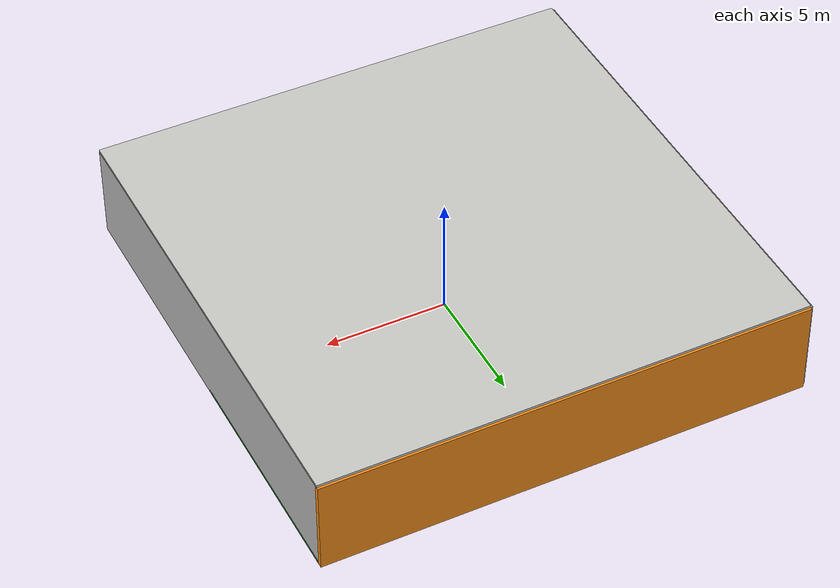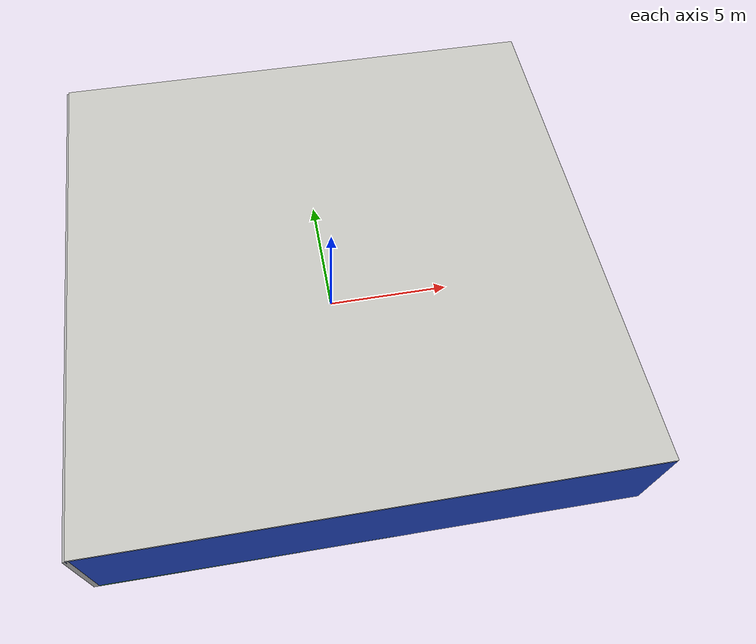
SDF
<sdf version="1.4">
 <world name="default">
  <physics type="ode">
   <max_step_size>0.001</max_step_size>
   <real_time_factor>1</real_time_factor>
   <real_time_update_rate>1000</real_time_update_rate>
   <gravity>0 0 -9.8</gravity>
  </physics>
  <scene><ambient>0.4 0.4 0.4 1</ambient><background>0.7 0.7 0.7 1</background><shadows>1</shadows></scene>
  <model name="Surrounding">
   <static>1</static>
   <link name="Ceiling">
    <collision name="Ceiling_Collision"><geometry><box><size>20 20 0.1</size></box></geometry></collision>
    <visual name="Ceiling_Visual">
     <geometry><box><size>20 20 0.1</size></box></geometry>
     <material>
      <script><uri>file://media/materials/scripts/gazebo.material</uri><name>Gazebo/CeilingTiled</name></script>
     </material>
    </visual>
    <pose>0 0 4.05 0 0 0</pose>
   </link>
   <link name="Wall_South">
    <collision name="Wall_South_Collision">
     <geometry><box><size>20 0 4</size></box></geometry>
     <pose>0 0 2 0 -0 0</pose>
    </collision>
    <visual name="Wall_South_Visual">
     <pose>0 0 2 0 -0 0</pose>
     <geometry><box><size>20 0 4</size></box></geometry>
     <material>
      <script><uri>file://media/materials/scripts/gazebo.material</uri><name>Gazebo/BlueLaser</name></script>
     </material>
    </visual>
    <velocity_decay><linear>0</linear><angular>0</angular></velocity_decay>
    <pose>0 -10 0 0 -0 0</pose>
   </link>
   <link name="Wall_East">
    <collision name="Wall_21_Collision">
     <geometry><box><size>20 0 4</size></box></geometry>
     <pose>0 0 2 0 -0 0</pose>
    </collision>
    <visual name="Wall_21_Visual">
     <pose>0 0 2 0 -0 0</pose>
     <geometry><box><size>20 0 4</size></box></geometry>
     <material>
      <script><uri>file://media/materials/scripts/gazebo.material</uri><name>Gazebo/PioneerBody</name></script>
     </material>
    </visual>
    <velocity_decay><linear>0</linear><angular>0</angular></velocity_decay>
    <pose>10 0 0 0 -0 1.5708</pose>
   </link>
   <link name="Wall_North">
    <collision name="Wall_22_Collision">
     <geometry><box><size>20 0.2 4</size></box></geometry>
     <pose>0 0 2 0 -0 0</pose>
    </collision>
    <visual name="Wall_22_Visual">
     <pose>0 0 2 0 -0 0</pose>
     <geometry><box><size>20 0.2 4</size></box></geometry>
     <material>
      <script><uri>file://media/materials/scripts/gazebo.material</uri><name>Gazebo/Orange</name></script>
     </material>
    </visual>
    <velocity_decay><linear>0</linear><angular>0</angular></velocity_decay>
    <pose>0 10 0 0 -0 0</pose>
   </link>
   <link name="Wall_West">
    <collision name="Wall_23_Collision">
     <geometry><box><size>20 0.2 4</size></box></geometry>
     <pose>0 0 2 0 -0 0</pose>
    </collision>
    <visual name="Wall_23_Visual">
     <pose>0 0 2 0 -0 0</pose>
     <geometry><box><size>20 0.2 4</size></box></geometry>
     <material>
      <script><uri>file://media/materials/scripts/gazebo.material</uri><name>Gazebo/LightOn</name></script>
     </material>
    </visual>
    <velocity_decay><linear>0</linear><angular>0</angular></velocity_decay>
    <pose>-10 0 0 0 0 -1.5708</pose>
   </link>
   <link name="Ground_link">
    <collision name="collision">
     <pose>0 0 .05 0 -0 0</pose>
     <geometry><box><size>20 20 0.1</size></box></geometry>
    </collision>
    <visual name="visual">
     <pose>0 0 .05 0 -0 0</pose>
     <geometry><box><size>20 20 0.1</size></box></geometry>
     <material>
      <script><uri>file://media/materials/scripts/gazebo.material</uri><name>Gazebo/Green</name></script>
     </material>
    </visual>
   </link>
   <static>1</static>
  </model>
  <spherical_coordinates>
   <surface_model>EARTH_WGS84</surface_model>
   <latitude_deg>0</latitude_deg>
   <longitude_deg>0</longitude_deg>
   <elevation>0</elevation>
   <heading_deg>0</heading_deg>
  </spherical_coordinates>
  <light name="lightball_0" type="diffuse">
   <diffuse>0.8 0.8 0.8 1</diffuse>
   <specular>0.2 0.2 0.2 1</specular>
   <attenuation>
    <range>100</range>
    <constant>0.7</constant>
    <linear>0.01</linear>
    <quadratic>0.001</quadratic>
   </attenuation>
   <direction>-0.5 0.1 -0.9</direction>
   <pose>8.39904199369 -7.05449341664 2.18442177734 0 0 0</pose>
  </light>
  <light name="lightball_1" type="diffuse">
   <diffuse>0.8 0.8 0.8 1</diffuse>
   <specular>0.2 0.2 0.2 1</specular>
   <attenuation>
    <range>100</range>
    <constant>0.7</constant>
    <linear>0.01</linear>
    <quadratic>0.001</quadratic>
   </attenuation>
   <direction>-0.5 0.1 -0.9</direction>
   <pose>3.84858260804 1.52780020842 1.21408994008 0 0 0</pose>
  </light>
  <light name="lightball_2" type="diffuse">
   <diffuse>0.8 0.8 0.8 1</diffuse>
   <specular>0.2 0.2 0.2 1</specular>
   <attenuation>
    <range>100</range>
    <constant>0.7</constant>
    <linear>0.01</linear>
    <quadratic>0.001</quadratic>
   </attenuation>
   <direction>-0.5 0.1 -0.9</direction>
   <pose>-5.31502234869 -7.93534951651 3.37055475437 0 0 0</pose>
  </light>
  <light name="lightball_3" type="diffuse">
   <diffuse>0.8 0.8 0.8 1</diffuse>
   <specular>0.2 0.2 0.2 1</specular>
   <attenuation>
    <range>100</range>
    <constant>0.7</constant>
    <linear>0.01</linear>
    <quadratic>0.001</quadratic>
   </attenuation>
   <direction>-0.5 0.1 -0.9</direction>
   <pose>9.85622996208 0.0858531224837 2.36159846062 0 0 0</pose>
  </light>
  <light name="lightball_4" type="diffuse">
   <diffuse>0.8 0.8 0.8 1</diffuse>
   <specular>0.2 0.2 0.2 1</specular>
   <attenuation>
    <range>100</range>
    <constant>0.7</constant>
    <linear>0.01</linear>
    <quadratic>0.001</quadratic>
   </attenuation>
   <direction>-0.5 0.1 -0.9</direction>
   <pose>1.01763295638 -9.39691308212 1.85821969308 0 0 0</pose>
  </light>
  <light name="lightball_5" type="diffuse">
   <diffuse>0.8 0.8 0.8 1</diffuse>
   <specular>0.2 0.2 0.2 1</specular>
   <attenuation>
    <range>100</range>
    <constant>0.7</constant>
    <linear>0.01</linear>
    <quadratic>0.001</quadratic>
   </attenuation>
   <direction>-0.5 0.1 -0.9</direction>
   <pose>3.14389260368 -4.58431192975 3.61195959693 0 0 0</pose>
  </light>
  <include>
   <uri>model://construction_cone</uri>
   <pose>-7.6635883064 -8.14606972119 0 0 0 1.9811463623</pose>
  </include>
  <include>
   <uri>model://textured_shapes</uri>
   <pose>-5.03668019632 -3.77185788116 0 0 0 0.00737975829832</pose>
  </include>
  <include><uri>model://table</uri><pose>-0.869385127558 -6.72130011581 0 0 0 0.728570404205</pose></include>
  <include><uri>model://cabinet</uri><pose>-0.61451941293 4.62581261899 0 0 0 1.44713238343</pose></include>
  <include>
   <uri>model://robocup_3Dsim_goal</uri>
   <pose>1.47995494626 -4.12676671965 0 0 0 1.89290136553</pose>
  </include>
  <include>
   <uri>model://robocup_3Dsim_goal</uri>
   <pose>4.10714656287 -3.64227273019 0 0 0 2.9816039903</pose>
  </include>
  <include><uri>model://table</uri><pose>6.47942793031 1.00313099831 0 0 0 1.30423018325</pose></include>
  <include><uri>model://table</uri><pose>6.52843845783 4.32326216288 0 0 0 3.10721550401</pose></include>
 </world>
</sdf>

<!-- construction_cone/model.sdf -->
<sdf version="1.5">
  <model name="Construction Cone">
    <link name="link">
      <collision name="collision">
        <geometry>
          <mesh>
            <scale>10 10 10</scale>
            <uri>file://isr-testbed/construction_cone/meshes/construction_cone.dae</uri>
          </mesh>
        </geometry>
      </collision>
      <visual name="visual">
        <geometry>
          <mesh>
            <scale>10 10 10</scale>
            <uri>file://isr-testbed/construction_cone/meshes/construction_cone.dae</uri>
          </mesh>
        </geometry>
      </visual>
    </link>
  </model>
</sdf>

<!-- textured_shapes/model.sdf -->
<sdf version="1.6">
  <model name="textured_shapes">
    <pose>0 0 0.5 0 0 0</pose>
    <link name="box">
      <pose>0 -1.5 0 0 0 0</pose>
      <collision name="collision">
        <geometry>
          <box>
            <size>1 1 1</size>
          </box>
        </geometry>
      </collision>
      <visual name="visual">
        <geometry>
          <box>
            <size>1 1 1</size>
          </box>
        </geometry>
        <material>
          <script>
            <uri>model://../model_source/models/textured_shapes/materials/scripts</uri>
            <uri>model://../model_source/models/textured_shapes/materials/textures</uri>
            <name>TexturedShape/Squares</name>
          </script>
        </material>
      </visual>
    </link>
    <link name="sphere">
      <collision name="collision">
        <geometry>
          <sphere>
            <radius>0.5</radius>
          </sphere>
        </geometry>
      </collision>
      <visual name="visual">
        <geometry>
          <sphere>
            <radius>0.5</radius>
          </sphere>
        </geometry>
        <material>
          <script>
            <uri>model://../model_source/models/textured_shapes/materials/scripts</uri>
            <uri>model://../model_source/models/textured_shapes/materials/textures</uri>
            <name>TexturedShape/Squares</name>
          </script>
        </material>
      </visual>
    </link>
    <link name="cylinder">
      <pose>0 1.5 0 0 0 0</pose>
      <collision name="collision">
        <geometry>
          <cylinder>
            <radius>0.5</radius>
            <length>1</length>
          </cylinder>
        </geometry>
      </collision>
      <visual name="visual">
        <geometry>
          <cylinder>
            <radius>0.5</radius>
            <length>1</length>
          </cylinder>
        </geometry>
        <material>
          <script>
            <uri>model://../model_source/models/textured_shapes/materials/scripts</uri>
            <uri>model://../model_source/models/textured_shapes/materials/textures</uri>
            <name>TexturedShape/Squares</name>
          </script>
        </material>
      </visual>
    </link>
  </model>
</sdf>

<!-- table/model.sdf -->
<sdf version="1.5">
  <model name="table">
    <static>true</static>
    <link name="link">
      <collision name="surface">
        <pose>0 0 1.0 0 0 0</pose>
        <geometry>
          <box>
            <size>1.5 0.8 0.03</size>
          </box>
        </geometry>
        <surface>
          <friction>
            <ode>
              <mu>0.6</mu>
              <mu2>0.6</mu2>
            </ode>
          </friction>
        </surface>
      </collision>
      <visual name="visual1">
        <pose>0 0 1.0 0 0 0</pose>
        <geometry>
          <box>
            <size>1.5 0.8 0.03</size>
          </box>
        </geometry>
        <material>
          <script>
            <uri>model://media/materials/scripts/gazebo.material</uri>
            <name>Gazebo/Wood</name>
          </script>
        </material>
      </visual>
      <collision name="front_left_leg">
        <pose>0.68 0.38 0.5 0 0 0</pose>
        <geometry>
          <cylinder>
            <radius>0.02</radius>
            <length>1.0</length>
          </cylinder>
        </geometry>
      </collision>
      <visual name="front_left_leg">
        <pose>0.68 0.38 0.5 0 0 0</pose>
        <geometry>
          <cylinder>
            <radius>0.02</radius>
            <length>1.0</length>
          </cylinder>
        </geometry>
        <material>
          <script>
            <uri>model://media/materials/scripts/gazebo.material</uri>
            <name>Gazebo/Grey</name>
          </script>
        </material>
      </visual>
      <collision name="front_right_leg">
        <pose>0.68 -0.38 0.5 0 0 0</pose>
        <geometry>
          <cylinder>
            <radius>0.02</radius>
            <length>1.0</length>
          </cylinder>
        </geometry>
      </collision>
      <visual name="front_right_leg">
        <pose>0.68 -0.38 0.5 0 0 0</pose>
        <geometry>
          <cylinder>
            <radius>0.02</radius>
            <length>1.0</length>
          </cylinder>
        </geometry>
        <material>
          <script>
            <uri>model://media/materials/scripts/gazebo.material</uri>
            <name>Gazebo/Grey</name>
          </script>
        </material>
      </visual>
      <collision name="back_right_leg">
        <pose>-0.68 -0.38 0.5 0 0 0</pose>
        <geometry>
          <cylinder>
            <radius>0.02</radius>
            <length>1.0</length>
          </cylinder>
        </geometry>
      </collision>
      <visual name="back_right_leg">
        <pose>-0.68 -0.38 0.5 0 0 0</pose>
        <geometry>
          <cylinder>
            <radius>0.02</radius>
            <length>1.0</length>
          </cylinder>
        </geometry>
        <material>
          <script>
            <uri>model://media/materials/scripts/gazebo.material</uri>
            <name>Gazebo/Grey</name>
          </script>
        </material>
      </visual>
      <collision name="back_left_leg">
        <pose>-0.68 0.38 0.5 0 0 0</pose>
        <geometry>
          <cylinder>
            <radius>0.02</radius>
            <length>1.0</length>
          </cylinder>
        </geometry>
      </collision>
      <visual name="back_left_leg">
        <pose>-0.68 0.38 0.5 0 0 0</pose>
        <geometry>
          <cylinder>
            <radius>0.02</radius>
            <length>1.0</length>
          </cylinder>
        </geometry>
        <material>
          <script>
            <uri>model://media/materials/scripts/gazebo.material</uri>
            <name>Gazebo/Grey</name>
          </script>
        </material>
      </visual>
    </link>
  </model>
</sdf>

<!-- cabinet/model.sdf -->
<sdf version="1.5">
  <model name="cabinet">
    <static>true</static>
    <link name="cabinet_bottom_plate">
      <inertial>
        <pose>0 0 -1 0 0 0</pose>
        <inertia>
          <ixx>2.050000</ixx>
          <ixy>0</ixy>
          <ixz>0</ixz>
          <iyy>2.050000</iyy>
          <iyz>0</iyz>
          <izz>2.050000</izz>
        </inertia>
        <mass>25.000000</mass>
      </inertial>
      <collision name="cabinet_bottom_plate_geom">
        <pose>0 0 0.010000 0 0 0</pose>
        <geometry>
          <box>
            <size>0.450000 0.450000 0.020000</size>
          </box>
        </geometry>
      </collision>
      <visual name="cabinet_bottom_plate_geom_visual">
        <pose>0 0 0.010000 0 0 0</pose>
        <geometry>
          <box>
            <size>0.450000 0.450000 0.020000</size>
          </box>
        </geometry>
        <material>
          <script>
            <uri>model://media/materials/scripts/gazebo.material</uri>
            <name>Gazebo/Wood</name>
          </script>
        </material>
      </visual>
      <collision name="cabinet_bottom_plate_geom_cabinet_back_plate">
        <pose>0.235000 0 0.510000 0 0 0</pose>
        <geometry>
          <box>
            <size>0.020000 0.450000 1.020000</size>
          </box>
        </geometry>
      </collision>
      <visual name="cabinet_bottom_plate_geom_cabinet_back_plate_visual">
        <pose>0.235000 0 0.510000 0 0 0</pose>
        <geometry>
          <box>
            <size>0.020000 0.450000 1.020000</size>
          </box>
        </geometry>
        <material>
          <script>
            <uri>model://media/materials/scripts/gazebo.material</uri>
            <name>Gazebo/Wood</name>
          </script>
        </material>
      </visual>
      <collision name="cabinet_bottom_plate_geom_cabinet_left_plate">
        <pose>0 0.235000 0.510000 0 0 0</pose>
        <geometry>
          <box>
            <size>0.450000 0.020000 1.020000</size>
          </box>
        </geometry>
      </collision>
      <visual name="cabinet_bottom_plate_geom_cabinet_left_plate_visual">
        <pose>0 0.235000 0.510000 0 0 0</pose>
        <geometry>
          <box>
            <size>0.450000 0.020000 1.020000</size>
          </box>
        </geometry>
        <material>
          <script>
            <uri>model://media/materials/scripts/gazebo.material</uri>
            <name>Gazebo/Wood</name>
          </script>
        </material>
      </visual>
      <collision name="cabinet_bottom_plate_geom_cabinet_middle_plate">
        <pose>0 0 0.510000 0 0 0</pose>
        <geometry>
          <box>
            <size>0.450000 0.450000 0.020000</size>
          </box>
        </geometry>
      </collision>
      <visual name="cabinet_bottom_plate_geom_cabinet_middle_plate_visual">
        <pose>0 0 0.510000 0 0 0</pose>
        <geometry>
          <box>
            <size>0.450000 0.450000 0.020000</size>
          </box>
        </geometry>
        <material>
          <script>
            <uri>model://media/materials/scripts/gazebo.material</uri>
            <name>Gazebo/Wood</name>
          </script>
        </material>
      </visual>
      <collision name="cabinet_bottom_plate_geom_cabinet_right_plate">
        <pose>0 -0.235000 0.510000 0 0 0</pose>
        <geometry>
          <box>
            <size>0.450000 0.020000 1.020000</size>
          </box>
        </geometry>
      </collision>
      <visual name="cabinet_bottom_plate_geom_cabinet_right_plate_visual">
        <pose>0 -0.235000 0.510000 0 0 0</pose>
        <geometry>
          <box>
            <size>0.450000 0.020000 1.020000</size>
          </box>
        </geometry>
        <material>
          <script>
            <uri>model://media/materials/scripts/gazebo.material</uri>
            <name>Gazebo/Wood</name>
          </script>
        </material>
      </visual>
      <collision name="cabinet_bottom_plate_geom_cabinet_top_plate">
        <pose>0 0 1.010000 0 0 0</pose>
        <geometry>
          <box>
            <size>0.450000 0.450000 0.020000</size>
          </box>
        </geometry>
      </collision>
      <visual name="cabinet_bottom_plate_geom_cabinet_top_plate_visual">
        <pose>0 0 1.010000 0 0 0</pose>
        <geometry>
          <box>
            <size>0.450000 0.450000 0.020000</size>
          </box>
        </geometry>
        <material>
          <script>
            <uri>model://media/materials/scripts/gazebo.material</uri>
            <name>Gazebo/Wood</name>
          </script>
        </material>
      </visual>
    </link>
  </model>
</sdf>

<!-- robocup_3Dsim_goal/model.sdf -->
<sdf version="1.5">
  <model name="robocup_3d_goal">
    <static>true</static>
    <link name="left_post">
      <pose>0 1.05 0.45 0 0 0</pose>
      <collision name="collision">
        <geometry>
          <cylinder>
            <radius>0.05</radius>
            <length>0.9</length>
          </cylinder>
        </geometry>
      </collision>
      <visual name="visual">
        <geometry>
          <cylinder>
            <radius>0.05</radius>
            <length>0.9</length>
          </cylinder>
        </geometry>
        <material>
          <script>
            <uri>file://media/materials/scripts/gazebo.material</uri>
            <name>Gazebo/ZincYellow</name>
          </script>
        </material>
      </visual>
    </link>
    <link name="left_support_horiz_lower">
      <pose>0.30 1.05 0.01 0 0 0</pose>
      <collision name="collision">
        <geometry>
          <box>
            <size>0.50 0.02 0.02</size>
          </box>
        </geometry>
      </collision>
      <visual name="visual">
        <geometry>
          <box>
            <size>0.50 0.02 0.02</size>
          </box>
        </geometry>
        <material>
          <script>
            <uri>file://media/materials/scripts/gazebo.material</uri>
            <name>Gazebo/White</name>
          </script>
        </material>
      </visual>
    </link>
    <link name="left_support_horiz_upper">
      <pose>0.30 1.05 0.79 0 0 0</pose>
      <collision name="collision">
        <geometry>
          <box>
            <size>0.50 0.02 0.02</size>
          </box>
        </geometry>
      </collision>
      <visual name="visual">
        <geometry>
          <box>
            <size>0.50 0.02 0.02</size>
          </box>
        </geometry>
        <material>
          <script>
            <uri>file://media/materials/scripts/gazebo.material</uri>
            <name>Gazebo/White</name>
          </script>
        </material>
      </visual>
    </link>
    <link name="left_support_vertical">
      <pose>0.56 1.05 0.4 0 1.5708 0</pose>
      <collision name="collision">
        <geometry>
          <box>
            <size>0.80 0.02 0.02</size>
          </box>
        </geometry>
      </collision>
      <visual name="visual">
        <geometry>
          <box>
            <size>0.80 0.02 0.02</size>
          </box>
        </geometry>
        <material>
          <script>
            <uri>file://media/materials/scripts/gazebo.material</uri>
            <name>Gazebo/White</name>
          </script>
        </material>
      </visual>
    </link>
    <link name="right_support_horiz_lower">
      <pose>0.30 -1.05 0.01 0 0 0</pose>
      <collision name="collision">
        <geometry>
          <box>
            <size>0.50 0.02 0.02</size>
          </box>
        </geometry>
      </collision>
      <visual name="visual">
        <geometry>
          <box>
            <size>0.50 0.02 0.02</size>
          </box>
        </geometry>
        <material>
          <script>
            <uri>file://media/materials/scripts/gazebo.material</uri>
            <name>Gazebo/White</name>
          </script>
        </material>
      </visual>
    </link>
    <link name="right_support_horiz_upper">
      <pose>0.30 -1.05 0.79 0 0 0</pose>
      <collision name="collision">
        <geometry>
          <box>
            <size>0.50 0.02 0.02</size>
          </box>
        </geometry>
      </collision>
      <visual name="visual">
        <geometry>
          <box>
            <size>0.50 0.02 0.02</size>
          </box>
        </geometry>
        <material>
          <script>
            <uri>file://media/materials/scripts/gazebo.material</uri>
            <name>Gazebo/White</name>
          </script>
        </material>
      </visual>
    </link>
    <link name="right_support_vertical">
      <pose>0.56 -1.05 0.4 0 1.5708 0</pose>
      <collision name="collision">
        <geometry>
          <box>
            <size>0.80 0.02 0.02</size>
          </box>
        </geometry>
      </collision>
      <visual name="visual">
        <geometry>
          <box>
            <size>0.80 0.02 0.02</size>
          </box>
        </geometry>
        <material>
          <script>
            <uri>file://media/materials/scripts/gazebo.material</uri>
            <name>Gazebo/White</name>
          </script>
        </material>
      </visual>
    </link>
    <link name="center_support_horiz_lower">
      <pose>0.56 0 0.01 0 1.5708 0</pose>
      <collision name="collision">
        <geometry>
          <box>
            <size>0.02 2.08 0.02</size>
          </box>
        </geometry>
      </collision>
      <visual name="visual">
        <geometry>
          <box>
            <size>0.02 2.08 0.02</size>
          </box>
        </geometry>
        <material>
          <script>
            <uri>file://media/materials/scripts/gazebo.material</uri>
            <name>Gazebo/White</name>
          </script>
        </material>
      </visual>
    </link>
    <link name="center_support_horiz_upper">
      <pose>0.56 0 0.79 0 1.5708 0</pose>
      <collision name="collision">
        <geometry>
          <box>
            <size>0.02 2.08 0.02</size>
          </box>
        </geometry>
      </collision>
      <visual name="visual">
        <geometry>
          <box>
            <size>0.02 2.08 0.02</size>
          </box>
        </geometry>
        <material>
          <script>
            <uri>file://media/materials/scripts/gazebo.material</uri>
            <name>Gazebo/White</name>
          </script>
        </material>
      </visual>
    </link>
    <link name="right_post">
      <pose>0 -1.05 0.45 0 0 0</pose>
      <collision name="collision">
        <geometry>
          <cylinder>
            <radius>0.05</radius>
            <length>0.9</length>
          </cylinder>
        </geometry>
      </collision>
      <visual name="visual">
        <geometry>
          <cylinder>
            <radius>0.05</radius>
            <length>0.9</length>
          </cylinder>
        </geometry>
        <material>
          <script>
            <uri>file://media/materials/scripts/gazebo.material</uri>
            <name>Gazebo/ZincYellow</name>
          </script>
        </material>
      </visual>
    </link>
    <link name="crossbar">
      <pose>0 0 0.85 1.57 1.57 0</pose>
      <collision name="collision">
        <geometry>
          <cylinder>
            <radius>0.05</radius>
            <length>2.0</length>
          </cylinder>
        </geometry>
      </collision>
      <visual name="visual">
        <geometry>
          <cylinder>
            <radius>0.05</radius>
            <length>2.0</length>
          </cylinder>
        </geometry>
        <material>
          <script>
            <uri>file://media/materials/scripts/gazebo.material</uri>
            <name>Gazebo/ZincYellow</name>
          </script>
        </material>
      </visual>
    </link>
    <link name="center_net">
      <pose>0.56 0 0.40 0 0 0</pose>
      <collision name="collision">
        <geometry>
          <box>
            <size>0.01 2.1 0.80</size>
          </box>
        </geometry>
      </collision>
      <visual name="visual">
        <geometry>
          <box>
            <size>0.01 2.1 0.80</size>
          </box>
        </geometry>
        <material>
          <script>
            <uri>model://../model_source/models/robocup09_spl_field/materials/scripts/</uri>
            <uri>model://../model_source/models/robocup09_spl_field/materials/textures/</uri>
            <name>RoboCup/Net</name>
          </script>
        </material>
      </visual>
    </link>
    <link name="left_net">
      <pose>0.30 1.05 0.40 0 0 0</pose>
      <collision name="collision">
        <geometry>
          <box>
            <size>0.50 0.01 0.76</size>
          </box>
        </geometry>
      </collision>
      <visual name="visual">
        <geometry>
          <box>
            <size>0.50 0.01 0.76</size>
          </box>
        </geometry>
        <material>
          <script>
            <uri>model://../model_source/models/robocup09_spl_field/materials/scripts/</uri>
            <uri>model://../model_source/models/robocup09_spl_field/materials/textures/</uri>
            <name>RoboCup/Net</name>
          </script>
        </material>
      </visual>
    </link>
    <link name="right_net">
      <pose>0.30 -1.05 0.40 0 0 0</pose>
      <collision name="collision">
        <geometry>
          <box>
            <size>0.50 0.01 0.76</size>
          </box>
        </geometry>
      </collision>
      <visual name="visual">
        <geometry>
          <box>
            <size>0.50 0.01 0.76</size>
          </box>
        </geometry>
        <material>
          <script>
            <uri>model://../model_source/models/robocup09_spl_field/materials/scripts/</uri>
            <uri>model://../model_source/models/robocup09_spl_field/materials/textures/</uri>
            <name>RoboCup/Net</name>
          </script>
        </material>
      </visual>
    </link>
  </model>
</sdf>
